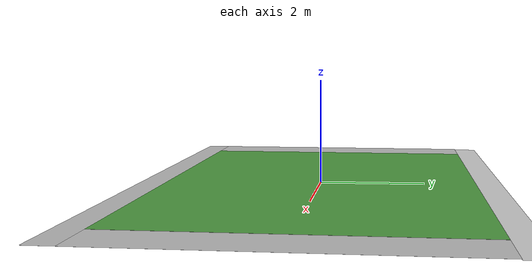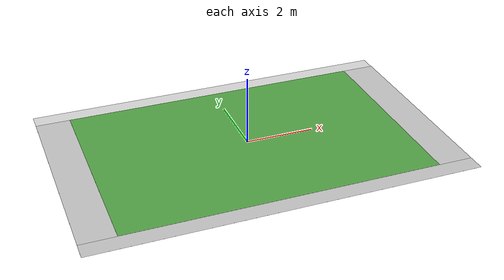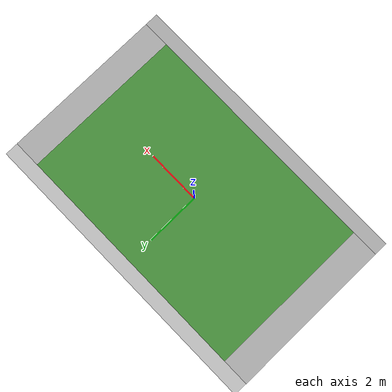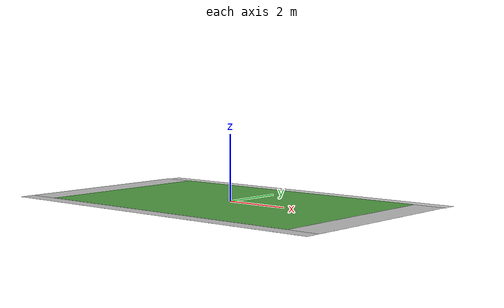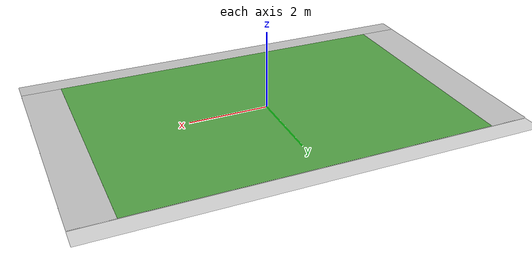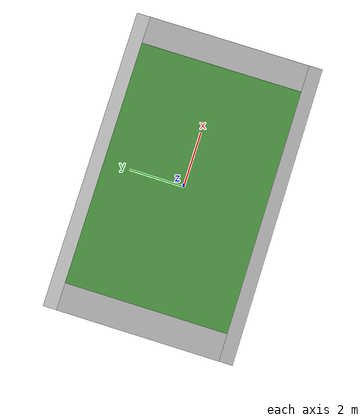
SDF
<?xml version="1.0" ?>
<sdf version="1.5">
  <model name="robocup_3d_field">
    <static>true</static>
    <link name="field">
      <pose>0 0 0.01 0 0 0</pose>
      <collision name="collision">
        <geometry>
          <plane>
            <normal>0 0 1</normal>
            <size>9.0 6.0</size>
          </plane>
        </geometry>
        <surface>
          <friction>
            <ode>
              <mu>100</mu>
              <mu2>50</mu2>
            </ode>
          </friction>
        </surface>
      </collision>
      <visual name="base1">
        <pose>0 3.25 0.001 0 0 0</pose>
        <cast_shadows>false</cast_shadows>
        <geometry>
          <plane>
            <normal>0 0 1</normal>
            <size>11.0 0.5</size>
          </plane>
        </geometry>
        <material>
          <script>
            <uri>model://robocup_3Dsim_field/materials/scripts/</uri>
            <uri>model://robocup_3Dsim_field/materials/textures/</uri>
            <name>RoboCup/FieldBorder</name>
          </script>
        </material>
      </visual>
      <visual name="base2">
        <pose>0 -3.25 0.001 0 0 0</pose>
        <cast_shadows>false</cast_shadows>
        <geometry>
          <plane>
            <normal>0 0 1</normal>
            <size>11.0 0.5</size>
          </plane>
        </geometry>
        <material>
          <script>
            <uri>model://robocup_3Dsim_field/materials/scripts/</uri>
            <uri>model://robocup_3Dsim_field/materials/textures/</uri>
            <name>RoboCup/FieldBorder</name>
          </script>
        </material>
      </visual>
      <visual name="base3">
        <pose>5.0 0 0.001 0 0 0</pose>
        <cast_shadows>false</cast_shadows>
        <geometry>
          <plane>
            <normal>0 0 1</normal>
            <size>1.0 6.0</size>
          </plane>
        </geometry>
        <material>
          <script>
            <uri>model://robocup_3Dsim_field/materials/scripts/</uri>
            <uri>model://robocup_3Dsim_field/materials/textures/</uri>
            <name>RoboCup/FieldBorder</name>
          </script>
        </material>
      </visual>
      <visual name="base4">
        <pose>-5.0 0 0.001 0 0 0</pose>
        <cast_shadows>false</cast_shadows>
        <geometry>
          <plane>
            <normal>0 0 1</normal>
            <size>1.0 6.0</size>
          </plane>
        </geometry>
        <material>
          <script>
            <uri>model://robocup_3Dsim_field/materials/scripts/</uri>
            <uri>model://robocup_3Dsim_field/materials/textures/</uri>
            <name>RoboCup/FieldBorder</name>
          </script>
        </material>
      </visual>
      <visual name="carpet">
        <cast_shadows>false</cast_shadows>
        <geometry>
          <plane>
            <normal>0 0 1</normal>
            <size>9.0 6.0</size>
          </plane>
        </geometry>
        <material>
          <script>
            <uri>model://robocup_3Dsim_field/materials/scripts/</uri>
            <uri>model://robocup_3Dsim_field/materials/textures/</uri>
            <name>RoboCup/Grass</name>
          </script>
        </material>
      </visual>
    </link>
  </model>
</sdf>
